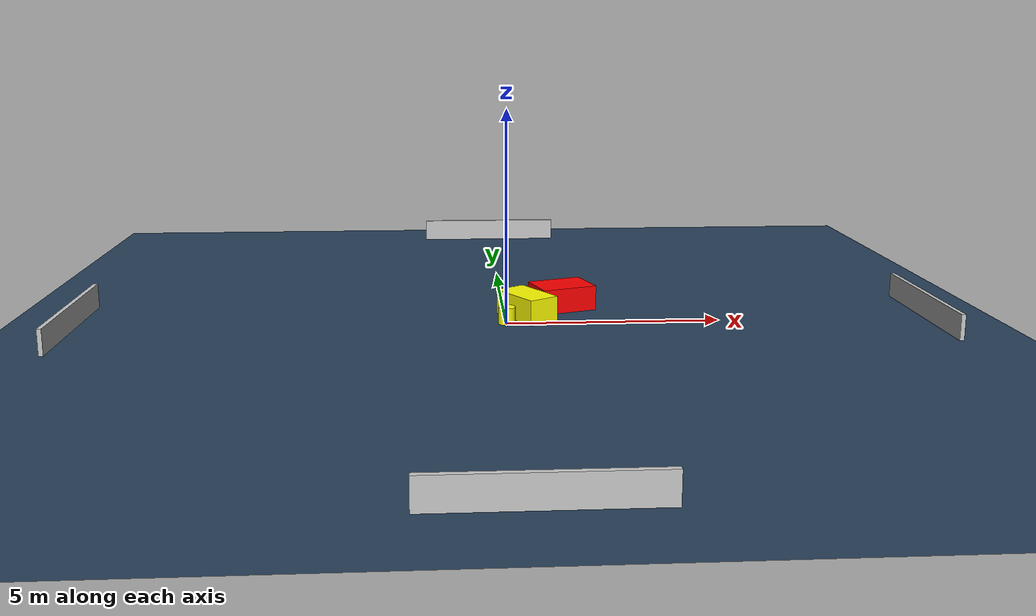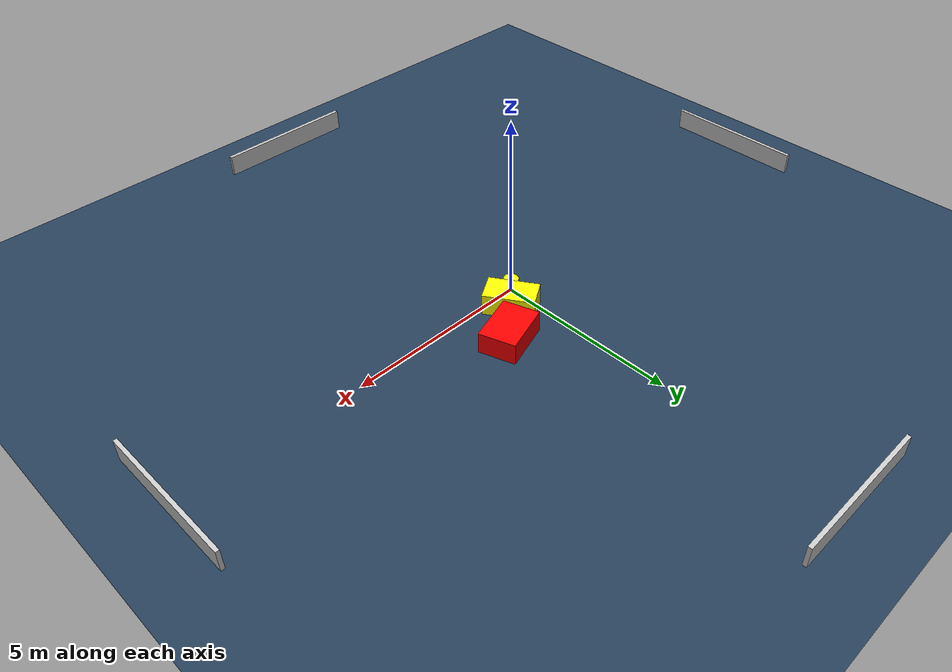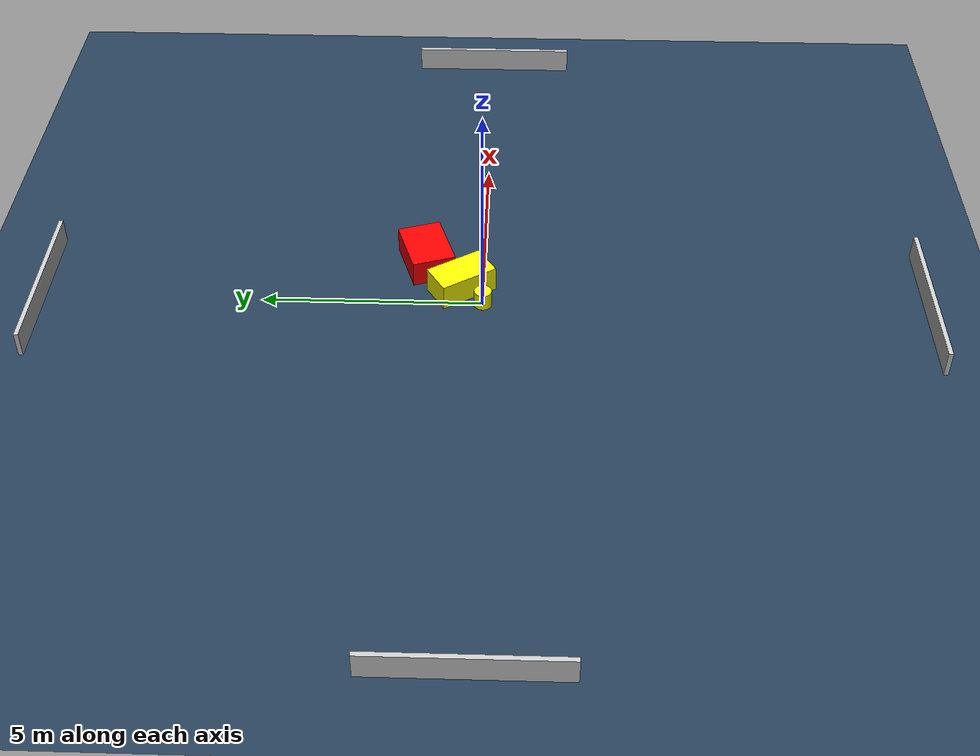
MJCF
<?xml version="1.0" ?>
<mujoco model="generated_environment">
  <option timestep="0.01" integrator="RK4" cone="elliptic"/>
  <default>
    <geom density="1"/>
  </default>
  <asset>
    <texture builtin="gradient" height="3072" name="skybox" rgb1="0.3 0.5 0.7" rgb2="0 0 0" type="skybox" width="512"/>
    <texture builtin="checker" height="300" name="groundplane" rgb1="0.2 0.3 0.4" rgb2="0.1 0.2 0.3" type="2d" width="300"/>
    <material name="groundplane" reflectance="0.2" texrepeat="5 5" texture="groundplane"/>
  </asset>
  <worldbody>
    <light dir="0 0 -1" directional="true" pos="0 0 1.5"/>
    <geom condim="3" friction="0.5 0.005 0.001" material="groundplane" name="floor" pos="0 0 0" size="0 0 0.05" type="plane"/>
    <body name="walls">
      <geom name="wall_1" condim="4" pos="-10.0 0.0 0.3" rgba="0.800000011920929 0.800000011920929 0.800000011920929 1.0" size="0.05 2.0 0.3" type="box"/>
      <geom name="wall_2" condim="4" pos="10.0 0.0 0.3" rgba="0.800000011920929 0.800000011920929 0.800000011920929 1.0" size="0.05 2.0 0.3" type="box"/>
      <geom name="wall_3" condim="4" pos="0.0 -10.0 0.3" rgba="0.800000011920929 0.800000011920929 0.800000011920929 1.0" size="2.0 0.05 0.3" type="box"/>
      <geom name="wall_4" condim="4" pos="0.0 10.0 0.3" rgba="0.800000011920929 0.800000011920929 0.800000011920929 1.0" size="2.0 0.05 0.3" type="box"/>
    </body>
    <body name="robot">
      <joint name="joint_x" type="slide" pos="0 0 0" axis="1 0 0"/>
      <joint name="joint_y" type="slide" pos="0 0 0" axis="0 1 0"/>
      <geom name="robot" type="cylinder" pos="0.0 0.0 0.2" size="0.2 0.2 0.0" mass="5.0" friction="1.0 0.005 0.0001" condim="4" rgba="1.0 1.0 0.0 1.0"/>
    </body>
    <body name="obstacle_1_movable">
      <geom name="obstacle_1_movable" condim="4" pos="0.5085994321972478 0.5065000678097988 0.3" euler="0 0 122.42008407908713" friction="0.0 0.005 0.001" rgba="1.0 1.0 0.0 1.0" size="0.6810518477367279 0.3868973359081891 0.3" type="box" mass="0.1"/>
      <joint type="free"/>
    </body>
    <body name="obstacle_2_static">
      <geom name="obstacle_2_static" condim="4" pos="1.4321718700481099 1.3500921545423745 0.3" euler="0 0 108.4272237054154" friction="0.0 0.005 0.001" rgba="1.0 0.0 0.0 1.0" size="0.4991415924430415 0.685568943898279 0.3" type="box"/>
    </body>
  </worldbody>
  <actuator>
    <motor name="actuator_x" joint="joint_x" gear="1" ctrlrange="-1 1"/>
    <motor name="actuator_y" joint="joint_y" gear="1" ctrlrange="-1 1"/>
  </actuator>
</mujoco>
